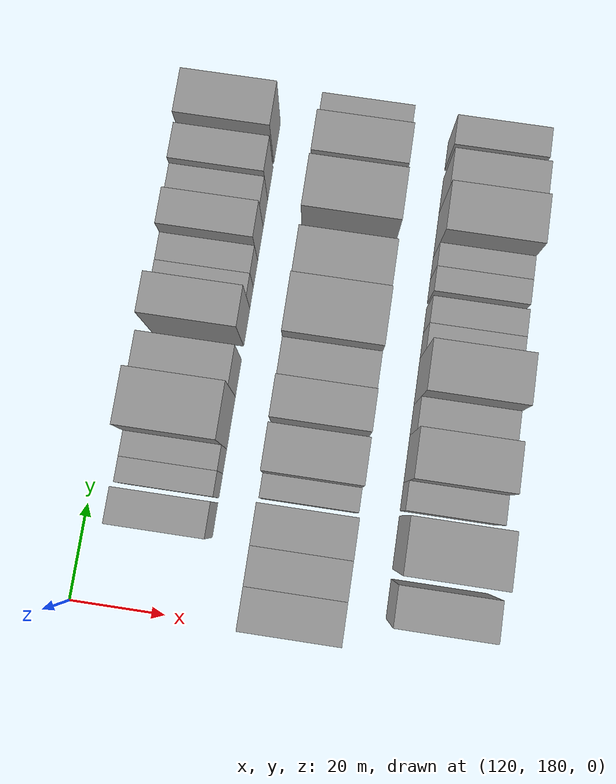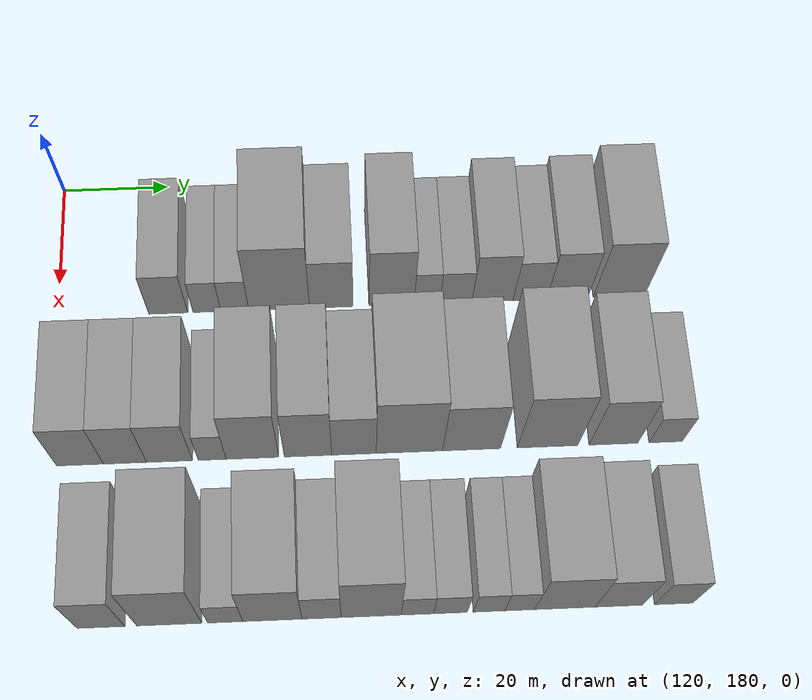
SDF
<sdf version="1.6">
 <world name="default">
  <model name="building_402">
   <static>1</static>
   <pose>137.0000 200.4938 0 0.000000 0.000000 0.000000</pose>
   <link name="link">
    <pose>0 0 7.50 0 0 0</pose>
    <collision name="collision"><geometry><box><size>20.0000 7.2321 15.0000</size></box></geometry></collision>
    <visual name="visual">
     <cast_shadows>0</cast_shadows>
     <geometry><box><size>20.0000 7.2321 15.0000</size></box></geometry>
     <material>
      <script>
       <uri>model://grey_wall/materials/scripts</uri>
       <uri>model://grey_wall/materials/textures</uri>
       <name>vrc/grey_wall</name>
      </script>
     </material>
    </visual>
   </link>
  </model>
  <model name="building_403">
   <static>1</static>
   <pose>137.0000 207.6839 0 0.000000 0.000000 0.000000</pose>
   <link name="link">
    <pose>0 0 6.00 0 0 0</pose>
    <collision name="collision"><geometry><box><size>20.0000 5.1481 12.0000</size></box></geometry></collision>
    <visual name="visual">
     <cast_shadows>0</cast_shadows>
     <geometry><box><size>20.0000 5.1481 12.0000</size></box></geometry>
     <material>
      <script>
       <uri>model://grey_wall/materials/scripts</uri>
       <uri>model://grey_wall/materials/textures</uri>
       <name>vrc/grey_wall</name>
      </script>
     </material>
    </visual>
   </link>
  </model>
  <model name="building_404">
   <static>1</static>
   <pose>137.0000 212.8643 0 0.000000 0.000000 0.000000</pose>
   <link name="link">
    <pose>0 0 6.00 0 0 0</pose>
    <collision name="collision"><geometry><box><size>20.0000 5.2127 12.0000</size></box></geometry></collision>
    <visual name="visual">
     <cast_shadows>0</cast_shadows>
     <geometry><box><size>20.0000 5.2127 12.0000</size></box></geometry>
     <material>
      <script>
       <uri>model://grey_wall/materials/scripts</uri>
       <uri>model://grey_wall/materials/textures</uri>
       <name>vrc/grey_wall</name>
      </script>
     </material>
    </visual>
   </link>
  </model>
  <model name="building_405">
   <static>1</static>
   <pose>137.0000 221.1349 0 0.000000 0.000000 0.000000</pose>
   <link name="link">
    <pose>0 0 12.00 0 0 0</pose>
    <collision name="collision"><geometry><box><size>20.0000 11.3285 24.0000</size></box></geometry></collision>
    <visual name="visual">
     <cast_shadows>0</cast_shadows>
     <geometry><box><size>20.0000 11.3285 24.0000</size></box></geometry>
     <material>
      <script>
       <uri>model://grey_wall/materials/scripts</uri>
       <uri>model://grey_wall/materials/textures</uri>
       <name>vrc/grey_wall</name>
      </script>
     </material>
    </visual>
   </link>
  </model>
  <model name="building_406">
   <static>1</static>
   <pose>137.0000 230.8446 0 0.000000 0.000000 0.000000</pose>
   <link name="link">
    <pose>0 0 9.00 0 0 0</pose>
    <collision name="collision"><geometry><box><size>20.0000 8.0909 18.0000</size></box></geometry></collision>
    <visual name="visual">
     <cast_shadows>0</cast_shadows>
     <geometry><box><size>20.0000 8.0909 18.0000</size></box></geometry>
     <material>
      <script>
       <uri>model://grey_wall/materials/scripts</uri>
       <uri>model://grey_wall/materials/textures</uri>
       <name>vrc/grey_wall</name>
      </script>
     </material>
    </visual>
   </link>
  </model>
  <model name="building_407">
   <static>1</static>
   <pose>137.0000 242.1013 0 0.000000 0.000000 0.000000</pose>
   <link name="link">
    <pose>0 0 10.50 0 0 0</pose>
    <collision name="collision"><geometry><box><size>20.0000 8.4226 21.0000</size></box></geometry></collision>
    <visual name="visual">
     <cast_shadows>0</cast_shadows>
     <geometry><box><size>20.0000 8.4226 21.0000</size></box></geometry>
     <material>
      <script>
       <uri>model://grey_wall/materials/scripts</uri>
       <uri>model://grey_wall/materials/textures</uri>
       <name>vrc/grey_wall</name>
      </script>
     </material>
    </visual>
   </link>
  </model>
  <model name="building_408">
   <static>1</static>
   <pose>137.0000 248.7253 0 0.000000 0.000000 0.000000</pose>
   <link name="link">
    <pose>0 0 6.00 0 0 0</pose>
    <collision name="collision"><geometry><box><size>20.0000 4.8253 12.0000</size></box></geometry></collision>
    <visual name="visual">
     <cast_shadows>0</cast_shadows>
     <geometry><box><size>20.0000 4.8253 12.0000</size></box></geometry>
     <material>
      <script>
       <uri>model://grey_wall/materials/scripts</uri>
       <uri>model://grey_wall/materials/textures</uri>
       <name>vrc/grey_wall</name>
      </script>
     </material>
    </visual>
   </link>
  </model>
  <model name="building_409">
   <static>1</static>
   <pose>137.0000 254.1273 0 0.000000 0.000000 0.000000</pose>
   <link name="link">
    <pose>0 0 6.00 0 0 0</pose>
    <collision name="collision"><geometry><box><size>20.0000 5.9788 12.0000</size></box></geometry></collision>
    <visual name="visual">
     <cast_shadows>0</cast_shadows>
     <geometry><box><size>20.0000 5.9788 12.0000</size></box></geometry>
     <material>
      <script>
       <uri>model://grey_wall/materials/scripts</uri>
       <uri>model://grey_wall/materials/textures</uri>
       <name>vrc/grey_wall</name>
      </script>
     </material>
    </visual>
   </link>
  </model>
  <model name="building_410">
   <static>1</static>
   <pose>137.0000 260.9754 0 0.000000 0.000000 0.000000</pose>
   <link name="link">
    <pose>0 0 9.00 0 0 0</pose>
    <collision name="collision"><geometry><box><size>20.0000 7.7174 18.0000</size></box></geometry></collision>
    <visual name="visual">
     <cast_shadows>0</cast_shadows>
     <geometry><box><size>20.0000 7.7174 18.0000</size></box></geometry>
     <material>
      <script>
       <uri>model://grey_wall/materials/scripts</uri>
       <uri>model://grey_wall/materials/textures</uri>
       <name>vrc/grey_wall</name>
      </script>
     </material>
    </visual>
   </link>
  </model>
  <model name="building_411">
   <static>1</static>
   <pose>137.0000 268.0005 0 0.000000 0.000000 0.000000</pose>
   <link name="link">
    <pose>0 0 7.50 0 0 0</pose>
    <collision name="collision"><geometry><box><size>20.0000 6.3327 15.0000</size></box></geometry></collision>
    <visual name="visual">
     <cast_shadows>0</cast_shadows>
     <geometry><box><size>20.0000 6.3327 15.0000</size></box></geometry>
     <material>
      <script>
       <uri>model://grey_wall/materials/scripts</uri>
       <uri>model://grey_wall/materials/textures</uri>
       <name>vrc/grey_wall</name>
      </script>
     </material>
    </visual>
   </link>
  </model>
  <model name="building_412">
   <static>1</static>
   <pose>137.0000 275.0151 0 0.000000 0.000000 0.000000</pose>
   <link name="link">
    <pose>0 0 9.00 0 0 0</pose>
    <collision name="collision"><geometry><box><size>20.0000 7.6966 18.0000</size></box></geometry></collision>
    <visual name="visual">
     <cast_shadows>0</cast_shadows>
     <geometry><box><size>20.0000 7.6966 18.0000</size></box></geometry>
     <material>
      <script>
       <uri>model://grey_wall/materials/scripts</uri>
       <uri>model://grey_wall/materials/textures</uri>
       <name>vrc/grey_wall</name>
      </script>
     </material>
    </visual>
   </link>
  </model>
  <model name="building_413">
   <static>1</static>
   <pose>137.0000 284.6923 0 0.000000 0.000000 0.000000</pose>
   <link name="link">
    <pose>0 0 10.50 0 0 0</pose>
    <collision name="collision"><geometry><box><size>20.0000 9.6579 21.0000</size></box></geometry></collision>
    <visual name="visual">
     <cast_shadows>0</cast_shadows>
     <geometry><box><size>20.0000 9.6579 21.0000</size></box></geometry>
     <material>
      <script>
       <uri>model://grey_wall/materials/scripts</uri>
       <uri>model://grey_wall/materials/textures</uri>
       <name>vrc/grey_wall</name>
      </script>
     </material>
    </visual>
   </link>
  </model>
  <model name="building_521">
   <static>1</static>
   <pose>166.0000 185.3236 0 0.000000 0.000000 0.000000</pose>
   <link name="link">
    <pose>0 0 9.00 0 0 0</pose>
    <collision name="collision"><geometry><box><size>20.0000 8.2933 18.0000</size></box></geometry></collision>
    <visual name="visual">
     <cast_shadows>0</cast_shadows>
     <geometry><box><size>20.0000 8.2933 18.0000</size></box></geometry>
     <material>
      <script>
       <uri>model://grey_wall/materials/scripts</uri>
       <uri>model://grey_wall/materials/textures</uri>
       <name>vrc/grey_wall</name>
      </script>
     </material>
    </visual>
   </link>
  </model>
  <model name="building_522">
   <static>1</static>
   <pose>166.0000 193.2935 0 0.000000 0.000000 0.000000</pose>
   <link name="link">
    <pose>0 0 9.00 0 0 0</pose>
    <collision name="collision"><geometry><box><size>20.0000 7.6464 18.0000</size></box></geometry></collision>
    <visual name="visual">
     <cast_shadows>0</cast_shadows>
     <geometry><box><size>20.0000 7.6464 18.0000</size></box></geometry>
     <material>
      <script>
       <uri>model://grey_wall/materials/scripts</uri>
       <uri>model://grey_wall/materials/textures</uri>
       <name>vrc/grey_wall</name>
      </script>
     </material>
    </visual>
   </link>
  </model>
  <model name="building_523">
   <static>1</static>
   <pose>166.0000 201.1977 0 0.000000 0.000000 0.000000</pose>
   <link name="link">
    <pose>0 0 9.00 0 0 0</pose>
    <collision name="collision"><geometry><box><size>20.0000 8.1620 18.0000</size></box></geometry></collision>
    <visual name="visual">
     <cast_shadows>0</cast_shadows>
     <geometry><box><size>20.0000 8.1620 18.0000</size></box></geometry>
     <material>
      <script>
       <uri>model://grey_wall/materials/scripts</uri>
       <uri>model://grey_wall/materials/textures</uri>
       <name>vrc/grey_wall</name>
      </script>
     </material>
    </visual>
   </link>
  </model>
  <model name="building_524">
   <static>1</static>
   <pose>166.0000 208.7544 0 0.000000 0.000000 0.000000</pose>
   <link name="link">
    <pose>0 0 6.00 0 0 0</pose>
    <collision name="collision"><geometry><box><size>20.0000 4.9515 12.0000</size></box></geometry></collision>
    <visual name="visual">
     <cast_shadows>0</cast_shadows>
     <geometry><box><size>20.0000 4.9515 12.0000</size></box></geometry>
     <material>
      <script>
       <uri>model://grey_wall/materials/scripts</uri>
       <uri>model://grey_wall/materials/textures</uri>
       <name>vrc/grey_wall</name>
      </script>
     </material>
    </visual>
   </link>
  </model>
  <model name="building_525">
   <static>1</static>
   <pose>166.0000 215.9018 0 0.000000 0.000000 0.000000</pose>
   <link name="link">
    <pose>0 0 10.50 0 0 0</pose>
    <collision name="collision"><geometry><box><size>20.0000 9.3433 21.0000</size></box></geometry></collision>
    <visual name="visual">
     <cast_shadows>0</cast_shadows>
     <geometry><box><size>20.0000 9.3433 21.0000</size></box></geometry>
     <material>
      <script>
       <uri>model://grey_wall/materials/scripts</uri>
       <uri>model://grey_wall/materials/textures</uri>
       <name>vrc/grey_wall</name>
      </script>
     </material>
    </visual>
   </link>
  </model>
  <model name="building_526">
   <static>1</static>
   <pose>166.0000 225.7831 0 0.000000 0.000000 0.000000</pose>
   <link name="link">
    <pose>0 0 10.50 0 0 0</pose>
    <collision name="collision"><geometry><box><size>20.0000 8.4193 21.0000</size></box></geometry></collision>
    <visual name="visual">
     <cast_shadows>0</cast_shadows>
     <geometry><box><size>20.0000 8.4193 21.0000</size></box></geometry>
     <material>
      <script>
       <uri>model://grey_wall/materials/scripts</uri>
       <uri>model://grey_wall/materials/textures</uri>
       <name>vrc/grey_wall</name>
      </script>
     </material>
    </visual>
   </link>
  </model>
  <model name="building_527">
   <static>1</static>
   <pose>166.0000 233.9442 0 0.000000 0.000000 0.000000</pose>
   <link name="link">
    <pose>0 0 9.00 0 0 0</pose>
    <collision name="collision"><geometry><box><size>20.0000 7.9030 18.0000</size></box></geometry></collision>
    <visual name="visual">
     <cast_shadows>0</cast_shadows>
     <geometry><box><size>20.0000 7.9030 18.0000</size></box></geometry>
     <material>
      <script>
       <uri>model://grey_wall/materials/scripts</uri>
       <uri>model://grey_wall/materials/textures</uri>
       <name>vrc/grey_wall</name>
      </script>
     </material>
    </visual>
   </link>
  </model>
  <model name="building_528">
   <static>1</static>
   <pose>166.0000 243.8197 0 0.000000 0.000000 0.000000</pose>
   <link name="link">
    <pose>0 0 12.00 0 0 0</pose>
    <collision name="collision"><geometry><box><size>20.0000 11.8479 24.0000</size></box></geometry></collision>
    <visual name="visual">
     <cast_shadows>0</cast_shadows>
     <geometry><box><size>20.0000 11.8479 24.0000</size></box></geometry>
     <material>
      <script>
       <uri>model://grey_wall/materials/scripts</uri>
       <uri>model://grey_wall/materials/textures</uri>
       <name>vrc/grey_wall</name>
      </script>
     </material>
    </visual>
   </link>
  </model>
  <model name="building_529">
   <static>1</static>
   <pose>166.0000 254.9306 0 0.000000 0.000000 0.000000</pose>
   <link name="link">
    <pose>0 0 10.50 0 0 0</pose>
    <collision name="collision"><geometry><box><size>20.0000 10.3740 21.0000</size></box></geometry></collision>
    <visual name="visual">
     <cast_shadows>0</cast_shadows>
     <geometry><box><size>20.0000 10.3740 21.0000</size></box></geometry>
     <material>
      <script>
       <uri>model://grey_wall/materials/scripts</uri>
       <uri>model://grey_wall/materials/textures</uri>
       <name>vrc/grey_wall</name>
      </script>
     </material>
    </visual>
   </link>
  </model>
  <model name="building_530">
   <static>1</static>
   <pose>166.0000 268.5409 0 0.000000 0.000000 0.000000</pose>
   <link name="link">
    <pose>0 0 12.00 0 0 0</pose>
    <collision name="collision"><geometry><box><size>20.0000 10.8465 24.0000</size></box></geometry></collision>
    <visual name="visual">
     <cast_shadows>0</cast_shadows>
     <geometry><box><size>20.0000 10.8465 24.0000</size></box></geometry>
     <material>
      <script>
       <uri>model://grey_wall/materials/scripts</uri>
       <uri>model://grey_wall/materials/textures</uri>
       <name>vrc/grey_wall</name>
      </script>
     </material>
    </visual>
   </link>
  </model>
  <model name="building_531">
   <static>1</static>
   <pose>166.0000 280.3400 0 0.000000 0.000000 0.000000</pose>
   <link name="link">
    <pose>0 0 10.50 0 0 0</pose>
    <collision name="collision"><geometry><box><size>20.0000 8.7518 21.0000</size></box></geometry></collision>
    <visual name="visual">
     <cast_shadows>0</cast_shadows>
     <geometry><box><size>20.0000 8.7518 21.0000</size></box></geometry>
     <material>
      <script>
       <uri>model://grey_wall/materials/scripts</uri>
       <uri>model://grey_wall/materials/textures</uri>
       <name>vrc/grey_wall</name>
      </script>
     </material>
    </visual>
   </link>
  </model>
  <model name="building_532">
   <static>1</static>
   <pose>166.0000 289.7140 0 0.000000 0.000000 0.000000</pose>
   <link name="link">
    <pose>0 0 6.00 0 0 0</pose>
    <collision name="collision"><geometry><box><size>20.0000 5.9960 12.0000</size></box></geometry></collision>
    <visual name="visual">
     <cast_shadows>0</cast_shadows>
     <geometry><box><size>20.0000 5.9960 12.0000</size></box></geometry>
     <material>
      <script>
       <uri>model://grey_wall/materials/scripts</uri>
       <uri>model://grey_wall/materials/textures</uri>
       <name>vrc/grey_wall</name>
      </script>
     </material>
    </visual>
   </link>
  </model>
  <model name="building_633">
   <static>1</static>
   <pose>195.0000 190.0657 0 0.000000 0.000000 0.000000</pose>
   <link name="link">
    <pose>0 0 9.00 0 0 0</pose>
    <collision name="collision"><geometry><box><size>20.0000 8.0292 18.0000</size></box></geometry></collision>
    <visual name="visual">
     <cast_shadows>0</cast_shadows>
     <geometry><box><size>20.0000 8.0292 18.0000</size></box></geometry>
     <material>
      <script>
       <uri>model://grey_wall/materials/scripts</uri>
       <uri>model://grey_wall/materials/textures</uri>
       <name>vrc/grey_wall</name>
      </script>
     </material>
    </visual>
   </link>
  </model>
  <model name="building_634">
   <static>1</static>
   <pose>195.0000 201.5830 0 0.000000 0.000000 0.000000</pose>
   <link name="link">
    <pose>0 0 12.00 0 0 0</pose>
    <collision name="collision"><geometry><box><size>20.0000 11.0052 24.0000</size></box></geometry></collision>
    <visual name="visual">
     <cast_shadows>0</cast_shadows>
     <geometry><box><size>20.0000 11.0052 24.0000</size></box></geometry>
     <material>
      <script>
       <uri>model://grey_wall/materials/scripts</uri>
       <uri>model://grey_wall/materials/textures</uri>
       <name>vrc/grey_wall</name>
      </script>
     </material>
    </visual>
   </link>
  </model>
  <model name="building_635">
   <static>1</static>
   <pose>195.0000 211.0539 0 0.000000 0.000000 0.000000</pose>
   <link name="link">
    <pose>0 0 6.00 0 0 0</pose>
    <collision name="collision"><geometry><box><size>20.0000 5.9366 12.0000</size></box></geometry></collision>
    <visual name="visual">
     <cast_shadows>0</cast_shadows>
     <geometry><box><size>20.0000 5.9366 12.0000</size></box></geometry>
     <material>
      <script>
       <uri>model://grey_wall/materials/scripts</uri>
       <uri>model://grey_wall/materials/textures</uri>
       <name>vrc/grey_wall</name>
      </script>
     </material>
    </visual>
   </link>
  </model>
  <model name="building_636">
   <static>1</static>
   <pose>195.0000 219.0265 0 0.000000 0.000000 0.000000</pose>
   <link name="link">
    <pose>0 0 10.50 0 0 0</pose>
    <collision name="collision"><geometry><box><size>20.0000 10.0086 21.0000</size></box></geometry></collision>
    <visual name="visual">
     <cast_shadows>0</cast_shadows>
     <geometry><box><size>20.0000 10.0086 21.0000</size></box></geometry>
     <material>
      <script>
       <uri>model://grey_wall/materials/scripts</uri>
       <uri>model://grey_wall/materials/textures</uri>
       <name>vrc/grey_wall</name>
      </script>
     </material>
    </visual>
   </link>
  </model>
  <model name="building_637">
   <static>1</static>
   <pose>195.0000 227.3283 0 0.000000 0.000000 0.000000</pose>
   <link name="link">
    <pose>0 0 7.50 0 0 0</pose>
    <collision name="collision"><geometry><box><size>20.0000 6.5950 15.0000</size></box></geometry></collision>
    <visual name="visual">
     <cast_shadows>0</cast_shadows>
     <geometry><box><size>20.0000 6.5950 15.0000</size></box></geometry>
     <material>
      <script>
       <uri>model://grey_wall/materials/scripts</uri>
       <uri>model://grey_wall/materials/textures</uri>
       <name>vrc/grey_wall</name>
      </script>
     </material>
    </visual>
   </link>
  </model>
  <model name="building_638">
   <static>1</static>
   <pose>195.0000 235.7259 0 0.000000 0.000000 0.000000</pose>
   <link name="link">
    <pose>0 0 12.00 0 0 0</pose>
    <collision name="collision"><geometry><box><size>20.0000 10.2002 24.0000</size></box></geometry></collision>
    <visual name="visual">
     <cast_shadows>0</cast_shadows>
     <geometry><box><size>20.0000 10.2002 24.0000</size></box></geometry>
     <material>
      <script>
       <uri>model://grey_wall/materials/scripts</uri>
       <uri>model://grey_wall/materials/textures</uri>
       <name>vrc/grey_wall</name>
      </script>
     </material>
    </visual>
   </link>
  </model>
  <model name="building_639">
   <static>1</static>
   <pose>195.0000 243.5708 0 0.000000 0.000000 0.000000</pose>
   <link name="link">
    <pose>0 0 6.00 0 0 0</pose>
    <collision name="collision"><geometry><box><size>20.0000 5.4897 12.0000</size></box></geometry></collision>
    <visual name="visual">
     <cast_shadows>0</cast_shadows>
     <geometry><box><size>20.0000 5.4897 12.0000</size></box></geometry>
     <material>
      <script>
       <uri>model://grey_wall/materials/scripts</uri>
       <uri>model://grey_wall/materials/textures</uri>
       <name>vrc/grey_wall</name>
      </script>
     </material>
    </visual>
   </link>
  </model>
  <model name="building_640">
   <static>1</static>
   <pose>195.0000 249.1935 0 0.000000 0.000000 0.000000</pose>
   <link name="link">
    <pose>0 0 6.00 0 0 0</pose>
    <collision name="collision"><geometry><box><size>20.0000 5.7557 12.0000</size></box></geometry></collision>
    <visual name="visual">
     <cast_shadows>0</cast_shadows>
     <geometry><box><size>20.0000 5.7557 12.0000</size></box></geometry>
     <material>
      <script>
       <uri>model://grey_wall/materials/scripts</uri>
       <uri>model://grey_wall/materials/textures</uri>
       <name>vrc/grey_wall</name>
      </script>
     </material>
    </visual>
   </link>
  </model>
  <model name="building_641">
   <static>1</static>
   <pose>195.0000 255.7517 0 0.000000 0.000000 0.000000</pose>
   <link name="link">
    <pose>0 0 6.00 0 0 0</pose>
    <collision name="collision"><geometry><box><size>20.0000 5.3607 12.0000</size></box></geometry></collision>
    <visual name="visual">
     <cast_shadows>0</cast_shadows>
     <geometry><box><size>20.0000 5.3607 12.0000</size></box></geometry>
     <material>
      <script>
       <uri>model://grey_wall/materials/scripts</uri>
       <uri>model://grey_wall/materials/textures</uri>
       <name>vrc/grey_wall</name>
      </script>
     </material>
    </visual>
   </link>
  </model>
  <model name="building_642">
   <static>1</static>
   <pose>195.0000 260.9664 0 0.000000 0.000000 0.000000</pose>
   <link name="link">
    <pose>0 0 6.00 0 0 0</pose>
    <collision name="collision"><geometry><box><size>20.0000 5.0689 12.0000</size></box></geometry></collision>
    <visual name="visual">
     <cast_shadows>0</cast_shadows>
     <geometry><box><size>20.0000 5.0689 12.0000</size></box></geometry>
     <material>
      <script>
       <uri>model://grey_wall/materials/scripts</uri>
       <uri>model://grey_wall/materials/textures</uri>
       <name>vrc/grey_wall</name>
      </script>
     </material>
    </visual>
   </link>
  </model>
  <model name="building_643">
   <static>1</static>
   <pose>195.0000 268.6524 0 0.000000 0.000000 0.000000</pose>
   <link name="link">
    <pose>0 0 10.50 0 0 0</pose>
    <collision name="collision"><geometry><box><size>20.0000 10.3031 21.0000</size></box></geometry></collision>
    <visual name="visual">
     <cast_shadows>0</cast_shadows>
     <geometry><box><size>20.0000 10.3031 21.0000</size></box></geometry>
     <material>
      <script>
       <uri>model://grey_wall/materials/scripts</uri>
       <uri>model://grey_wall/materials/textures</uri>
       <name>vrc/grey_wall</name>
      </script>
     </material>
    </visual>
   </link>
  </model>
  <model name="building_644">
   <static>1</static>
   <pose>195.0000 277.8907 0 0.000000 0.000000 0.000000</pose>
   <link name="link">
    <pose>0 0 9.00 0 0 0</pose>
    <collision name="collision"><geometry><box><size>20.0000 8.1735 18.0000</size></box></geometry></collision>
    <visual name="visual">
     <cast_shadows>0</cast_shadows>
     <geometry><box><size>20.0000 8.1735 18.0000</size></box></geometry>
     <material>
      <script>
       <uri>model://grey_wall/materials/scripts</uri>
       <uri>model://grey_wall/materials/textures</uri>
       <name>vrc/grey_wall</name>
      </script>
     </material>
    </visual>
   </link>
  </model>
  <model name="building_645">
   <static>1</static>
   <pose>195.0000 287.2756 0 0.000000 0.000000 0.000000</pose>
   <link name="link">
    <pose>0 0 7.50 0 0 0</pose>
    <collision name="collision"><geometry><box><size>20.0000 6.5962 15.0000</size></box></geometry></collision>
    <visual name="visual">
     <cast_shadows>0</cast_shadows>
     <geometry><box><size>20.0000 6.5962 15.0000</size></box></geometry>
     <material>
      <script>
       <uri>model://grey_wall/materials/scripts</uri>
       <uri>model://grey_wall/materials/textures</uri>
       <name>vrc/grey_wall</name>
      </script>
     </material>
    </visual>
   </link>
  </model>
 </world>
</sdf>
